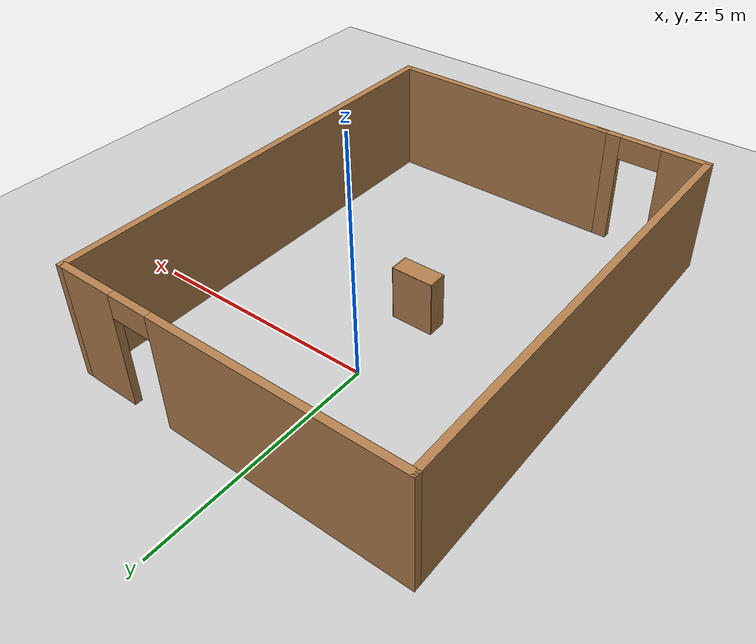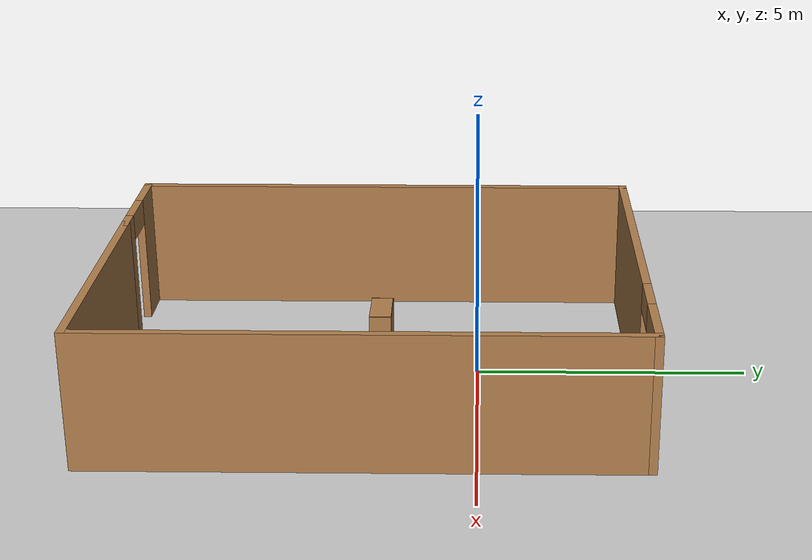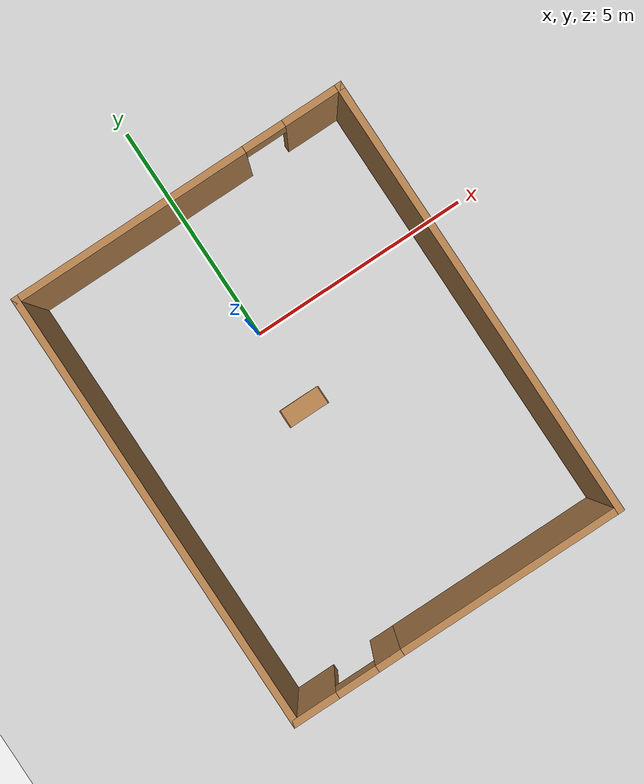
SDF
<sdf version="1.7">
 <world name="default">
  <light name="sun" type="directional">
   <pose>0 0 10 0 -0 0</pose>
   <diffuse>0.8 0.8 0.8 1</diffuse>
   <specular>0.2 0.2 0.2 1</specular>
   <attenuation>
    <range>1000</range>
    <constant>0.9</constant>
    <linear>0.01</linear>
    <quadratic>0.001</quadratic>
   </attenuation>
   <direction>-0.5 0.1 -0.9</direction>
   <spot><inner_angle>0</inner_angle><outer_angle>0</outer_angle><falloff>0</falloff></spot>
  </light>
  <model name="ground_plane">
   <static>1</static>
   <link name="link">
    <collision name="collision">
     <geometry><plane><normal>0 0 1</normal><size>100 100</size></plane></geometry>
     <surface><friction><ode><mu>100</mu><mu2>50</mu2></ode></friction></surface>
    </collision>
    <visual name="visual">
     <cast_shadows>0</cast_shadows>
     <geometry><plane><normal>0 0 1</normal><size>100 100</size></plane></geometry>
     <material>
      <script><uri>file://media/materials/scripts/gazebo.material</uri><name>Gazebo/Grey</name></script>
     </material>
    </visual>
   </link>
  </model>
  <gravity>0 0 -9.8</gravity>
  <magnetic_field>6e-06 2.3e-05 -4.2e-05</magnetic_field>
  <atmosphere type="adiabatic"/>
  <physics type="ode">
   <max_step_size>0.001</max_step_size>
   <real_time_factor>1</real_time_factor>
   <real_time_update_rate>1000</real_time_update_rate>
  </physics>
  <scene><ambient>0.4 0.4 0.4 1</ambient><background>0.7 0.7 0.7 1</background><shadows>1</shadows></scene>
  <audio><device>default</device></audio>
  <spherical_coordinates>
   <surface_model>EARTH_WGS84</surface_model>
   <latitude_deg>0</latitude_deg>
   <longitude_deg>0</longitude_deg>
   <elevation>0</elevation>
   <heading_deg>0</heading_deg>
  </spherical_coordinates>
  <model name="bookshelf">
   <static>1</static>
   <link name="link">
    <inertial><mass>1</mass></inertial>
    <collision name="back">
     <pose>0 0.005 0.6 0 -0 0</pose>
     <geometry><box><size>0.9 0.01 1.2</size></box></geometry>
    </collision>
    <visual name="visual1">
     <pose>0 0.005 0.6 0 -0 0</pose>
     <geometry><box><size>0.9 0.01 1.2</size></box></geometry>
     <material>
      <script><uri>file://media/materials/scripts/gazebo.material</uri><name>Gazebo/Wood</name></script>
     </material>
    </visual>
    <collision name="left_side">
     <pose>0.45 -0.195 0.6 0 -0 0</pose>
     <geometry><box><size>0.02 0.4 1.2</size></box></geometry>
    </collision>
    <visual name="visual2">
     <pose>0.45 -0.195 0.6 0 -0 0</pose>
     <geometry><box><size>0.02 0.4 1.2</size></box></geometry>
     <material>
      <script><uri>file://media/materials/scripts/gazebo.material</uri><name>Gazebo/Wood</name></script>
     </material>
    </visual>
    <collision name="right_side">
     <pose>-0.45 -0.195 0.6 0 -0 0</pose>
     <geometry><box><size>0.02 0.4 1.2</size></box></geometry>
    </collision>
    <visual name="visual3">
     <pose>-0.45 -0.195 0.6 0 -0 0</pose>
     <geometry><box><size>0.02 0.4 1.2</size></box></geometry>
     <material>
      <script><uri>file://media/materials/scripts/gazebo.material</uri><name>Gazebo/Wood</name></script>
     </material>
    </visual>
    <collision name="bottom">
     <pose>0 -0.195 0.03 0 -0 0</pose>
     <geometry><box><size>0.88 0.4 0.06</size></box></geometry>
    </collision>
    <visual name="visual4">
     <pose>0 -0.195 0.03 0 -0 0</pose>
     <geometry><box><size>0.88 0.4 0.06</size></box></geometry>
     <material>
      <script><uri>file://media/materials/scripts/gazebo.material</uri><name>Gazebo/Wood</name></script>
     </material>
    </visual>
    <collision name="top">
     <pose>0 -0.195 1.19 0 -0 0</pose>
     <geometry><box><size>0.88 0.4 0.02</size></box></geometry>
    </collision>
    <visual name="visual5">
     <pose>0 -0.195 1.19 0 -0 0</pose>
     <geometry><box><size>0.88 0.4 0.02</size></box></geometry>
     <material>
      <script><uri>file://media/materials/scripts/gazebo.material</uri><name>Gazebo/Wood</name></script>
     </material>
    </visual>
    <collision name="low_shelf">
     <pose>0 -0.195 0.43 0 -0 0</pose>
     <geometry><box><size>0.88 0.4 0.02</size></box></geometry>
    </collision>
    <visual name="visual6">
     <pose>0 -0.195 0.43 0 -0 0</pose>
     <geometry><box><size>0.88 0.4 0.02</size></box></geometry>
     <material>
      <script><uri>file://media/materials/scripts/gazebo.material</uri><name>Gazebo/Wood</name></script>
     </material>
    </visual>
    <collision name="high_shelf">
     <pose>0 -0.195 0.8 0 -0 0</pose>
     <geometry><box><size>0.88 0.4 0.02</size></box></geometry>
    </collision>
    <visual name="visual7">
     <pose>0 -0.195 0.8 0 -0 0</pose>
     <geometry><box><size>0.88 0.4 0.02</size></box></geometry>
     <material>
      <script><uri>file://media/materials/scripts/gazebo.material</uri><name>Gazebo/Wood</name></script>
     </material>
    </visual>
   </link>
   <pose>-0.038173 -1.58974 0.080918 0 -0 0</pose>
  </model>
  <model name="first_robot">
   <pose>0.215 -1.89 0 0 -0 0</pose>
   <link name="Wall_15">
    <collision name="Wall_15_Collision">
     <geometry><box><size>9.75 0.15 2.5</size></box></geometry>
     <pose>0 0 1.25 0 -0 0</pose>
    </collision>
    <visual name="Wall_15_Visual">
     <pose>0 0 1.25 0 -0 0</pose>
     <geometry><box><size>9.75 0.15 2.5</size></box></geometry>
     <material>
      <script><uri>file://media/materials/scripts/gazebo.material</uri><name>Gazebo/Wood</name></script>
      <ambient>1 1 1 1</ambient>
     </material>
     <meta><layer>0</layer></meta>
    </visual>
    <pose>-3.675 -0 0 0 -0 -1.5708</pose>
   </link>
   <link name="Wall_16">
    <pose>-2.5 -4.8 0 0 -0 0</pose>
    <visual name="Wall_16_Visual_0">
     <pose>-0.735127 0 1.25 0 -0 0</pose>
     <geometry><box><size>1.02975 0.15 2.5</size></box></geometry>
     <material>
      <script><uri>file://media/materials/scripts/gazebo.material</uri><name>Gazebo/Wood</name></script>
      <ambient>1 1 1 1</ambient>
     </material>
     <meta><layer>0</layer></meta>
    </visual>
    <collision name="Wall_16_Collision_0">
     <geometry><box><size>1.02975 0.15 2.5</size></box></geometry>
     <pose>-0.735127 0 1.25 0 -0 0</pose>
    </collision>
    <visual name="Wall_16_Visual_1">
     <pose>0.964873 0 1.25 0 -0 0</pose>
     <geometry><box><size>0.570253 0.15 2.5</size></box></geometry>
     <material>
      <script><uri>file://media/materials/scripts/gazebo.material</uri><name>Gazebo/Wood</name></script>
      <ambient>1 1 1 1</ambient>
     </material>
     <meta><layer>0</layer></meta>
    </visual>
    <collision name="Wall_16_Collision_1">
     <geometry><box><size>0.570253 0.15 2.5</size></box></geometry>
     <pose>0.964873 0 1.25 0 -0 0</pose>
    </collision>
    <visual name="Wall_16_Visual_2">
     <pose>0.229747 0 2.25 0 -0 0</pose>
     <geometry><box><size>0.9 0.15 0.5</size></box></geometry>
     <material>
      <script><uri>file://media/materials/scripts/gazebo.material</uri><name>Gazebo/Wood</name></script>
      <ambient>1 1 1 1</ambient>
     </material>
     <meta><layer>0</layer></meta>
    </visual>
    <collision name="Wall_16_Collision_2">
     <geometry><box><size>0.9 0.15 0.5</size></box></geometry>
     <pose>0.229747 0 2.25 0 -0 0</pose>
    </collision>
   </link>
   <link name="Wall_7">
    <collision name="Wall_7_Collision">
     <geometry><box><size>5.25 0.15 2.5</size></box></geometry>
     <pose>0 0 1.25 0 -0 0</pose>
    </collision>
    <visual name="Wall_7_Visual">
     <pose>0 0 1.25 0 -0 0</pose>
     <geometry><box><size>5.25 0.15 2.5</size></box></geometry>
     <material>
      <script><uri>file://media/materials/scripts/gazebo.material</uri><name>Gazebo/Wood</name></script>
      <ambient>1 1 1 1</ambient>
     </material>
     <meta><layer>0</layer></meta>
    </visual>
    <pose>1.125 -4.8 0 0 -0 0</pose>
   </link>
   <link name="Wall_8">
    <collision name="Wall_8_Collision">
     <geometry><box><size>9.75 0.15 2.5</size></box></geometry>
     <pose>0 0 1.25 0 -0 0</pose>
    </collision>
    <visual name="Wall_8_Visual">
     <pose>0 0 1.25 0 -0 0</pose>
     <geometry><box><size>9.75 0.15 2.5</size></box></geometry>
     <material>
      <script><uri>file://media/materials/scripts/gazebo.material</uri><name>Gazebo/Wood</name></script>
      <ambient>1 1 1 1</ambient>
     </material>
     <meta><layer>0</layer></meta>
    </visual>
    <pose>3.675 -0 0 0 -0 1.5708</pose>
   </link>
   <link name="Wall_9">
    <pose>-0 4.8 0 0 -0 3.14159</pose>
    <visual name="Wall_9_Visual_0">
     <pose>-3.0768 0 1.25 0 -0 0</pose>
     <geometry><box><size>1.3464 0.15 2.5</size></box></geometry>
     <material>
      <script><uri>file://media/materials/scripts/gazebo.material</uri><name>Gazebo/Wood</name></script>
      <ambient>1 1 1 1</ambient>
     </material>
     <meta><layer>0</layer></meta>
    </visual>
    <collision name="Wall_9_Collision_0">
     <geometry><box><size>1.3464 0.15 2.5</size></box></geometry>
     <pose>-3.0768 0 1.25 0 -0 0</pose>
    </collision>
    <visual name="Wall_9_Visual_1">
     <pose>1.1232 0 1.25 0 -0 0</pose>
     <geometry><box><size>5.2536 0.15 2.5</size></box></geometry>
     <material>
      <script><uri>file://media/materials/scripts/gazebo.material</uri><name>Gazebo/Wood</name></script>
      <ambient>1 1 1 1</ambient>
     </material>
     <meta><layer>0</layer></meta>
    </visual>
    <collision name="Wall_9_Collision_1">
     <geometry><box><size>5.2536 0.15 2.5</size></box></geometry>
     <pose>1.1232 0 1.25 0 -0 0</pose>
    </collision>
    <visual name="Wall_9_Visual_2">
     <pose>-1.9536 0 2.25 0 -0 0</pose>
     <geometry><box><size>0.9 0.15 0.5</size></box></geometry>
     <material>
      <script><uri>file://media/materials/scripts/gazebo.material</uri><name>Gazebo/Wood</name></script>
      <ambient>1 1 1 1</ambient>
     </material>
     <meta><layer>0</layer></meta>
    </visual>
    <collision name="Wall_9_Collision_2">
     <geometry><box><size>0.9 0.15 0.5</size></box></geometry>
     <pose>-1.9536 0 2.25 0 -0 0</pose>
    </collision>
   </link>
   <static>1</static>
  </model>
 </world>
</sdf>
